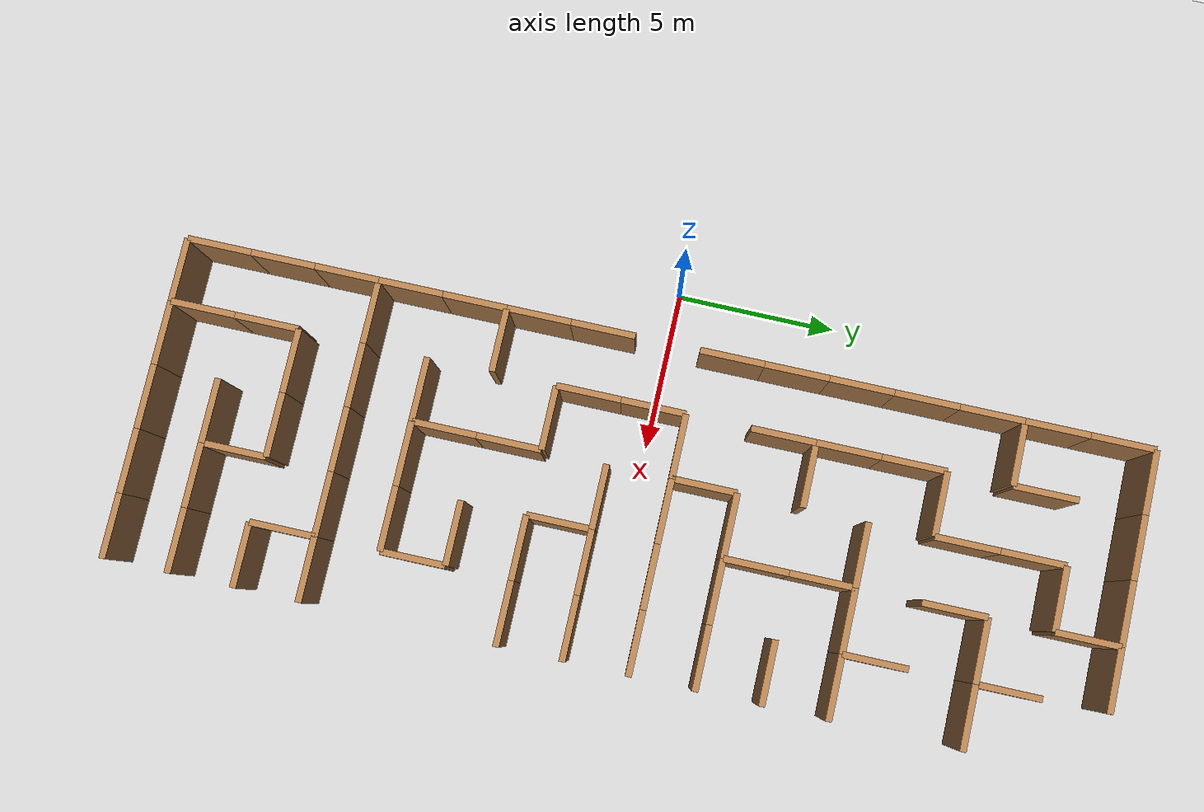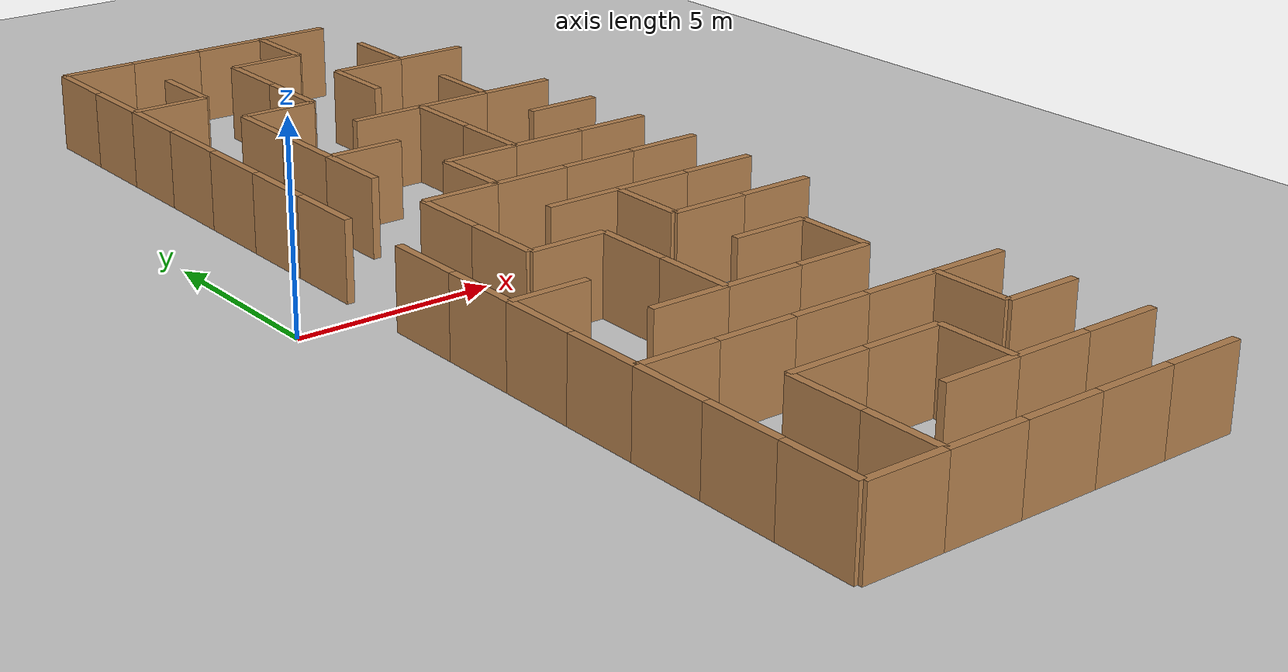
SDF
<sdf version="1.6">
 <world name="labyrinth_world">
  <include><uri>model://ground_plane</uri></include>
  <include><uri>model://sun</uri></include>
  <model name="h_wall_0">
   <static>true</static>
   <pose>2.0 -14.0 1.0 0 0 0</pose>
   <link name="link">
    <collision name="c"><geometry><box><size>0.2 2.0 2.0</size></box></geometry></collision>
    <visual name="v">
     <geometry><box><size>0.2 2.0 2.0</size></box></geometry>
     <material>
      <script><uri>file://media/materials/scripts/gazebo.material</uri><name>Gazebo/Wood</name></script>
     </material>
    </visual>
   </link>
  </model>
  <model name="h_wall_1">
   <static>true</static>
   <pose>2.0 -12.0 1.0 0 0 0</pose>
   <link name="link">
    <collision name="c"><geometry><box><size>0.2 2.0 2.0</size></box></geometry></collision>
    <visual name="v">
     <geometry><box><size>0.2 2.0 2.0</size></box></geometry>
     <material>
      <script><uri>file://media/materials/scripts/gazebo.material</uri><name>Gazebo/WoodFloor</name></script>
     </material>
    </visual>
   </link>
  </model>
  <model name="h_wall_2">
   <static>true</static>
   <pose>2.0 -10.0 1.0 0 0 0</pose>
   <link name="link">
    <collision name="c"><geometry><box><size>0.2 2.0 2.0</size></box></geometry></collision>
    <visual name="v">
     <geometry><box><size>0.2 2.0 2.0</size></box></geometry>
     <material>
      <script><uri>file://media/materials/scripts/gazebo.material</uri><name>Gazebo/Wood</name></script>
     </material>
    </visual>
   </link>
  </model>
  <model name="h_wall_3">
   <static>true</static>
   <pose>2.0 -8.0 1.0 0 0 0</pose>
   <link name="link">
    <collision name="c"><geometry><box><size>0.2 2.0 2.0</size></box></geometry></collision>
    <visual name="v">
     <geometry><box><size>0.2 2.0 2.0</size></box></geometry>
     <material>
      <script><uri>file://media/materials/scripts/gazebo.material</uri><name>Gazebo/WoodFloor</name></script>
     </material>
    </visual>
   </link>
  </model>
  <model name="h_wall_4">
   <static>true</static>
   <pose>2.0 -6.0 1.0 0 0 0</pose>
   <link name="link">
    <collision name="c"><geometry><box><size>0.2 2.0 2.0</size></box></geometry></collision>
    <visual name="v">
     <geometry><box><size>0.2 2.0 2.0</size></box></geometry>
     <material>
      <script><uri>file://media/materials/scripts/gazebo.material</uri><name>Gazebo/Wood</name></script>
     </material>
    </visual>
   </link>
  </model>
  <model name="h_wall_5">
   <static>true</static>
   <pose>2.0 -4.0 1.0 0 0 0</pose>
   <link name="link">
    <collision name="c"><geometry><box><size>0.2 2.0 2.0</size></box></geometry></collision>
    <visual name="v">
     <geometry><box><size>0.2 2.0 2.0</size></box></geometry>
     <material>
      <script><uri>file://media/materials/scripts/gazebo.material</uri><name>Gazebo/WoodFloor</name></script>
     </material>
    </visual>
   </link>
  </model>
  <model name="h_wall_6">
   <static>true</static>
   <pose>2.0 -2.0 1.0 0 0 0</pose>
   <link name="link">
    <collision name="c"><geometry><box><size>0.2 2.0 2.0</size></box></geometry></collision>
    <visual name="v">
     <geometry><box><size>0.2 2.0 2.0</size></box></geometry>
     <material>
      <script><uri>file://media/materials/scripts/gazebo.material</uri><name>Gazebo/Wood</name></script>
     </material>
    </visual>
   </link>
  </model>
  <model name="h_wall_7">
   <static>true</static>
   <pose>2.0 2.0 1.0 0 0 0</pose>
   <link name="link">
    <collision name="c"><geometry><box><size>0.2 2.0 2.0</size></box></geometry></collision>
    <visual name="v">
     <geometry><box><size>0.2 2.0 2.0</size></box></geometry>
     <material>
      <script><uri>file://media/materials/scripts/gazebo.material</uri><name>Gazebo/WoodFloor</name></script>
     </material>
    </visual>
   </link>
  </model>
  <model name="h_wall_8">
   <static>true</static>
   <pose>2.0 4.0 1.0 0 0 0</pose>
   <link name="link">
    <collision name="c"><geometry><box><size>0.2 2.0 2.0</size></box></geometry></collision>
    <visual name="v">
     <geometry><box><size>0.2 2.0 2.0</size></box></geometry>
     <material>
      <script><uri>file://media/materials/scripts/gazebo.material</uri><name>Gazebo/Wood</name></script>
     </material>
    </visual>
   </link>
  </model>
  <model name="h_wall_9">
   <static>true</static>
   <pose>2.0 6.0 1.0 0 0 0</pose>
   <link name="link">
    <collision name="c"><geometry><box><size>0.2 2.0 2.0</size></box></geometry></collision>
    <visual name="v">
     <geometry><box><size>0.2 2.0 2.0</size></box></geometry>
     <material>
      <script><uri>file://media/materials/scripts/gazebo.material</uri><name>Gazebo/WoodFloor</name></script>
     </material>
    </visual>
   </link>
  </model>
  <model name="h_wall_10">
   <static>true</static>
   <pose>2.0 8.0 1.0 0 0 0</pose>
   <link name="link">
    <collision name="c"><geometry><box><size>0.2 2.0 2.0</size></box></geometry></collision>
    <visual name="v">
     <geometry><box><size>0.2 2.0 2.0</size></box></geometry>
     <material>
      <script><uri>file://media/materials/scripts/gazebo.material</uri><name>Gazebo/Wood</name></script>
     </material>
    </visual>
   </link>
  </model>
  <model name="h_wall_11">
   <static>true</static>
   <pose>2.0 10.0 1.0 0 0 0</pose>
   <link name="link">
    <collision name="c"><geometry><box><size>0.2 2.0 2.0</size></box></geometry></collision>
    <visual name="v">
     <geometry><box><size>0.2 2.0 2.0</size></box></geometry>
     <material>
      <script><uri>file://media/materials/scripts/gazebo.material</uri><name>Gazebo/WoodFloor</name></script>
     </material>
    </visual>
   </link>
  </model>
  <model name="h_wall_12">
   <static>true</static>
   <pose>2.0 12.0 1.0 0 0 0</pose>
   <link name="link">
    <collision name="c"><geometry><box><size>0.2 2.0 2.0</size></box></geometry></collision>
    <visual name="v">
     <geometry><box><size>0.2 2.0 2.0</size></box></geometry>
     <material>
      <script><uri>file://media/materials/scripts/gazebo.material</uri><name>Gazebo/Wood</name></script>
     </material>
    </visual>
   </link>
  </model>
  <model name="h_wall_13">
   <static>true</static>
   <pose>2.0 14.0 1.0 0 0 0</pose>
   <link name="link">
    <collision name="c"><geometry><box><size>0.2 2.0 2.0</size></box></geometry></collision>
    <visual name="v">
     <geometry><box><size>0.2 2.0 2.0</size></box></geometry>
     <material>
      <script><uri>file://media/materials/scripts/gazebo.material</uri><name>Gazebo/WoodFloor</name></script>
     </material>
    </visual>
   </link>
  </model>
  <model name="h_wall_14">
   <static>true</static>
   <pose>4.0 -14.0 1.0 0 0 0</pose>
   <link name="link">
    <collision name="c"><geometry><box><size>0.2 2.0 2.0</size></box></geometry></collision>
    <visual name="v">
     <geometry><box><size>0.2 2.0 2.0</size></box></geometry>
     <material>
      <script><uri>file://media/materials/scripts/gazebo.material</uri><name>Gazebo/Wood</name></script>
     </material>
    </visual>
   </link>
  </model>
  <model name="h_wall_15">
   <static>true</static>
   <pose>4.0 -12.0 1.0 0 0 0</pose>
   <link name="link">
    <collision name="c"><geometry><box><size>0.2 2.0 2.0</size></box></geometry></collision>
    <visual name="v">
     <geometry><box><size>0.2 2.0 2.0</size></box></geometry>
     <material>
      <script><uri>file://media/materials/scripts/gazebo.material</uri><name>Gazebo/WoodFloor</name></script>
     </material>
    </visual>
   </link>
  </model>
  <model name="h_wall_16">
   <static>true</static>
   <pose>4.0 -2.0 1.0 0 0 0</pose>
   <link name="link">
    <collision name="c"><geometry><box><size>0.2 2.0 2.0</size></box></geometry></collision>
    <visual name="v">
     <geometry><box><size>0.2 2.0 2.0</size></box></geometry>
     <material>
      <script><uri>file://media/materials/scripts/gazebo.material</uri><name>Gazebo/Wood</name></script>
     </material>
    </visual>
   </link>
  </model>
  <model name="h_wall_17">
   <static>true</static>
   <pose>4.0 0.0 1.0 0 0 0</pose>
   <link name="link">
    <collision name="c"><geometry><box><size>0.2 2.0 2.0</size></box></geometry></collision>
    <visual name="v">
     <geometry><box><size>0.2 2.0 2.0</size></box></geometry>
     <material>
      <script><uri>file://media/materials/scripts/gazebo.material</uri><name>Gazebo/WoodFloor</name></script>
     </material>
    </visual>
   </link>
  </model>
  <model name="h_wall_18">
   <static>true</static>
   <pose>4.0 4.0 1.0 0 0 0</pose>
   <link name="link">
    <collision name="c"><geometry><box><size>0.2 2.0 2.0</size></box></geometry></collision>
    <visual name="v">
     <geometry><box><size>0.2 2.0 2.0</size></box></geometry>
     <material>
      <script><uri>file://media/materials/scripts/gazebo.material</uri><name>Gazebo/Wood</name></script>
     </material>
    </visual>
   </link>
  </model>
  <model name="h_wall_19">
   <static>true</static>
   <pose>4.0 6.0 1.0 0 0 0</pose>
   <link name="link">
    <collision name="c"><geometry><box><size>0.2 2.0 2.0</size></box></geometry></collision>
    <visual name="v">
     <geometry><box><size>0.2 2.0 2.0</size></box></geometry>
     <material>
      <script><uri>file://media/materials/scripts/gazebo.material</uri><name>Gazebo/WoodFloor</name></script>
     </material>
    </visual>
   </link>
  </model>
  <model name="h_wall_20">
   <static>true</static>
   <pose>4.0 8.0 1.0 0 0 0</pose>
   <link name="link">
    <collision name="c"><geometry><box><size>0.2 2.0 2.0</size></box></geometry></collision>
    <visual name="v">
     <geometry><box><size>0.2 2.0 2.0</size></box></geometry>
     <material>
      <script><uri>file://media/materials/scripts/gazebo.material</uri><name>Gazebo/Wood</name></script>
     </material>
    </visual>
   </link>
  </model>
  <model name="h_wall_21">
   <static>true</static>
   <pose>4.0 12.0 1.0 0 0 0</pose>
   <link name="link">
    <collision name="c"><geometry><box><size>0.2 2.0 2.0</size></box></geometry></collision>
    <visual name="v">
     <geometry><box><size>0.2 2.0 2.0</size></box></geometry>
     <material>
      <script><uri>file://media/materials/scripts/gazebo.material</uri><name>Gazebo/WoodFloor</name></script>
     </material>
    </visual>
   </link>
  </model>
  <model name="h_wall_22">
   <static>true</static>
   <pose>6.0 -6.0 1.0 0 0 0</pose>
   <link name="link">
    <collision name="c"><geometry><box><size>0.2 2.0 2.0</size></box></geometry></collision>
    <visual name="v">
     <geometry><box><size>0.2 2.0 2.0</size></box></geometry>
     <material>
      <script><uri>file://media/materials/scripts/gazebo.material</uri><name>Gazebo/Wood</name></script>
     </material>
    </visual>
   </link>
  </model>
  <model name="h_wall_23">
   <static>true</static>
   <pose>6.0 -4.0 1.0 0 0 0</pose>
   <link name="link">
    <collision name="c"><geometry><box><size>0.2 2.0 2.0</size></box></geometry></collision>
    <visual name="v">
     <geometry><box><size>0.2 2.0 2.0</size></box></geometry>
     <material>
      <script><uri>file://media/materials/scripts/gazebo.material</uri><name>Gazebo/WoodFloor</name></script>
     </material>
    </visual>
   </link>
  </model>
  <model name="h_wall_24">
   <static>true</static>
   <pose>6.0 2.0 1.0 0 0 0</pose>
   <link name="link">
    <collision name="c"><geometry><box><size>0.2 2.0 2.0</size></box></geometry></collision>
    <visual name="v">
     <geometry><box><size>0.2 2.0 2.0</size></box></geometry>
     <material>
      <script><uri>file://media/materials/scripts/gazebo.material</uri><name>Gazebo/Wood</name></script>
     </material>
    </visual>
   </link>
  </model>
  <model name="h_wall_25">
   <static>true</static>
   <pose>6.0 10.0 1.0 0 0 0</pose>
   <link name="link">
    <collision name="c"><geometry><box><size>0.2 2.0 2.0</size></box></geometry></collision>
    <visual name="v">
     <geometry><box><size>0.2 2.0 2.0</size></box></geometry>
     <material>
      <script><uri>file://media/materials/scripts/gazebo.material</uri><name>Gazebo/WoodFloor</name></script>
     </material>
    </visual>
   </link>
  </model>
  <model name="h_wall_26">
   <static>true</static>
   <pose>6.0 12.0 1.0 0 0 0</pose>
   <link name="link">
    <collision name="c"><geometry><box><size>0.2 2.0 2.0</size></box></geometry></collision>
    <visual name="v">
     <geometry><box><size>0.2 2.0 2.0</size></box></geometry>
     <material>
      <script><uri>file://media/materials/scripts/gazebo.material</uri><name>Gazebo/Wood</name></script>
     </material>
    </visual>
   </link>
  </model>
  <model name="h_wall_27">
   <static>true</static>
   <pose>8.0 -12.0 1.0 0 0 0</pose>
   <link name="link">
    <collision name="c"><geometry><box><size>0.2 2.0 2.0</size></box></geometry></collision>
    <visual name="v">
     <geometry><box><size>0.2 2.0 2.0</size></box></geometry>
     <material>
      <script><uri>file://media/materials/scripts/gazebo.material</uri><name>Gazebo/WoodFloor</name></script>
     </material>
    </visual>
   </link>
  </model>
  <model name="h_wall_28">
   <static>true</static>
   <pose>8.0 -2.0 1.0 0 0 0</pose>
   <link name="link">
    <collision name="c"><geometry><box><size>0.2 2.0 2.0</size></box></geometry></collision>
    <visual name="v">
     <geometry><box><size>0.2 2.0 2.0</size></box></geometry>
     <material>
      <script><uri>file://media/materials/scripts/gazebo.material</uri><name>Gazebo/Wood</name></script>
     </material>
    </visual>
   </link>
  </model>
  <model name="h_wall_29">
   <static>true</static>
   <pose>8.0 4.0 1.0 0 0 0</pose>
   <link name="link">
    <collision name="c"><geometry><box><size>0.2 2.0 2.0</size></box></geometry></collision>
    <visual name="v">
     <geometry><box><size>0.2 2.0 2.0</size></box></geometry>
     <material>
      <script><uri>file://media/materials/scripts/gazebo.material</uri><name>Gazebo/WoodFloor</name></script>
     </material>
    </visual>
   </link>
  </model>
  <model name="h_wall_30">
   <static>true</static>
   <pose>8.0 6.0 1.0 0 0 0</pose>
   <link name="link">
    <collision name="c"><geometry><box><size>0.2 2.0 2.0</size></box></geometry></collision>
    <visual name="v">
     <geometry><box><size>0.2 2.0 2.0</size></box></geometry>
     <material>
      <script><uri>file://media/materials/scripts/gazebo.material</uri><name>Gazebo/Wood</name></script>
     </material>
    </visual>
   </link>
  </model>
  <model name="h_wall_31">
   <static>true</static>
   <pose>8.0 10.0 1.0 0 0 0</pose>
   <link name="link">
    <collision name="c"><geometry><box><size>0.2 2.0 2.0</size></box></geometry></collision>
    <visual name="v">
     <geometry><box><size>0.2 2.0 2.0</size></box></geometry>
     <material>
      <script><uri>file://media/materials/scripts/gazebo.material</uri><name>Gazebo/WoodFloor</name></script>
     </material>
    </visual>
   </link>
  </model>
  <model name="h_wall_32">
   <static>true</static>
   <pose>8.0 14.0 1.0 0 0 0</pose>
   <link name="link">
    <collision name="c"><geometry><box><size>0.2 2.0 2.0</size></box></geometry></collision>
    <visual name="v">
     <geometry><box><size>0.2 2.0 2.0</size></box></geometry>
     <material>
      <script><uri>file://media/materials/scripts/gazebo.material</uri><name>Gazebo/Wood</name></script>
     </material>
    </visual>
   </link>
  </model>
  <model name="h_wall_33">
   <static>true</static>
   <pose>10.0 -10.0 1.0 0 0 0</pose>
   <link name="link">
    <collision name="c"><geometry><box><size>0.2 2.0 2.0</size></box></geometry></collision>
    <visual name="v">
     <geometry><box><size>0.2 2.0 2.0</size></box></geometry>
     <material>
      <script><uri>file://media/materials/scripts/gazebo.material</uri><name>Gazebo/WoodFloor</name></script>
     </material>
    </visual>
   </link>
  </model>
  <model name="h_wall_34">
   <static>true</static>
   <pose>10.0 -6.0 1.0 0 0 0</pose>
   <link name="link">
    <collision name="c"><geometry><box><size>0.2 2.0 2.0</size></box></geometry></collision>
    <visual name="v">
     <geometry><box><size>0.2 2.0 2.0</size></box></geometry>
     <material>
      <script><uri>file://media/materials/scripts/gazebo.material</uri><name>Gazebo/Wood</name></script>
     </material>
    </visual>
   </link>
  </model>
  <model name="h_wall_35">
   <static>true</static>
   <pose>10.0 8.0 1.0 0 0 0</pose>
   <link name="link">
    <collision name="c"><geometry><box><size>0.2 2.0 2.0</size></box></geometry></collision>
    <visual name="v">
     <geometry><box><size>0.2 2.0 2.0</size></box></geometry>
     <material>
      <script><uri>file://media/materials/scripts/gazebo.material</uri><name>Gazebo/WoodFloor</name></script>
     </material>
    </visual>
   </link>
  </model>
  <model name="h_wall_36">
   <static>true</static>
   <pose>10.0 12.0 1.0 0 0 0</pose>
   <link name="link">
    <collision name="c"><geometry><box><size>0.2 2.0 2.0</size></box></geometry></collision>
    <visual name="v">
     <geometry><box><size>0.2 2.0 2.0</size></box></geometry>
     <material>
      <script><uri>file://media/materials/scripts/gazebo.material</uri><name>Gazebo/Wood</name></script>
     </material>
    </visual>
   </link>
  </model>
  <model name="v_wall_119">
   <static>true</static>
   <pose>3.0 -15.0 1.0 0 0 0</pose>
   <link name="link">
    <collision name="c"><geometry><box><size>2.0 0.2 2.0</size></box></geometry></collision>
    <visual name="v">
     <geometry><box><size>2.0 0.2 2.0</size></box></geometry>
     <material>
      <script><uri>file://media/materials/scripts/gazebo.material</uri><name>Gazebo/WoodFloor</name></script>
     </material>
    </visual>
   </link>
  </model>
  <model name="v_wall_120">
   <static>true</static>
   <pose>3.0 -9.0 1.0 0 0 0</pose>
   <link name="link">
    <collision name="c"><geometry><box><size>2.0 0.2 2.0</size></box></geometry></collision>
    <visual name="v">
     <geometry><box><size>2.0 0.2 2.0</size></box></geometry>
     <material>
      <script><uri>file://media/materials/scripts/gazebo.material</uri><name>Gazebo/Wood</name></script>
     </material>
    </visual>
   </link>
  </model>
  <model name="v_wall_121">
   <static>true</static>
   <pose>3.0 -5.0 1.0 0 0 0</pose>
   <link name="link">
    <collision name="c"><geometry><box><size>2.0 0.2 2.0</size></box></geometry></collision>
    <visual name="v">
     <geometry><box><size>2.0 0.2 2.0</size></box></geometry>
     <material>
      <script><uri>file://media/materials/scripts/gazebo.material</uri><name>Gazebo/WoodFloor</name></script>
     </material>
    </visual>
   </link>
  </model>
  <model name="v_wall_122">
   <static>true</static>
   <pose>3.0 11.0 1.0 0 0 0</pose>
   <link name="link">
    <collision name="c"><geometry><box><size>2.0 0.2 2.0</size></box></geometry></collision>
    <visual name="v">
     <geometry><box><size>2.0 0.2 2.0</size></box></geometry>
     <material>
      <script><uri>file://media/materials/scripts/gazebo.material</uri><name>Gazebo/Wood</name></script>
     </material>
    </visual>
   </link>
  </model>
  <model name="v_wall_123">
   <static>true</static>
   <pose>3.0 15.0 1.0 0 0 0</pose>
   <link name="link">
    <collision name="c"><geometry><box><size>2.0 0.2 2.0</size></box></geometry></collision>
    <visual name="v">
     <geometry><box><size>2.0 0.2 2.0</size></box></geometry>
     <material>
      <script><uri>file://media/materials/scripts/gazebo.material</uri><name>Gazebo/WoodFloor</name></script>
     </material>
    </visual>
   </link>
  </model>
  <model name="v_wall_124">
   <static>true</static>
   <pose>5.0 -15.0 1.0 0 0 0</pose>
   <link name="link">
    <collision name="c"><geometry><box><size>2.0 0.2 2.0</size></box></geometry></collision>
    <visual name="v">
     <geometry><box><size>2.0 0.2 2.0</size></box></geometry>
     <material>
      <script><uri>file://media/materials/scripts/gazebo.material</uri><name>Gazebo/Wood</name></script>
     </material>
    </visual>
   </link>
  </model>
  <model name="v_wall_125">
   <static>true</static>
   <pose>5.0 -11.0 1.0 0 0 0</pose>
   <link name="link">
    <collision name="c"><geometry><box><size>2.0 0.2 2.0</size></box></geometry></collision>
    <visual name="v">
     <geometry><box><size>2.0 0.2 2.0</size></box></geometry>
     <material>
      <script><uri>file://media/materials/scripts/gazebo.material</uri><name>Gazebo/WoodFloor</name></script>
     </material>
    </visual>
   </link>
  </model>
  <model name="v_wall_126">
   <static>true</static>
   <pose>5.0 -9.0 1.0 0 0 0</pose>
   <link name="link">
    <collision name="c"><geometry><box><size>2.0 0.2 2.0</size></box></geometry></collision>
    <visual name="v">
     <geometry><box><size>2.0 0.2 2.0</size></box></geometry>
     <material>
      <script><uri>file://media/materials/scripts/gazebo.material</uri><name>Gazebo/Wood</name></script>
     </material>
    </visual>
   </link>
  </model>
  <model name="v_wall_127">
   <static>true</static>
   <pose>5.0 -7.0 1.0 0 0 0</pose>
   <link name="link">
    <collision name="c"><geometry><box><size>2.0 0.2 2.0</size></box></geometry></collision>
    <visual name="v">
     <geometry><box><size>2.0 0.2 2.0</size></box></geometry>
     <material>
      <script><uri>file://media/materials/scripts/gazebo.material</uri><name>Gazebo/WoodFloor</name></script>
     </material>
    </visual>
   </link>
  </model>
  <model name="v_wall_128">
   <static>true</static>
   <pose>5.0 -3.0 1.0 0 0 0</pose>
   <link name="link">
    <collision name="c"><geometry><box><size>2.0 0.2 2.0</size></box></geometry></collision>
    <visual name="v">
     <geometry><box><size>2.0 0.2 2.0</size></box></geometry>
     <material>
      <script><uri>file://media/materials/scripts/gazebo.material</uri><name>Gazebo/Wood</name></script>
     </material>
    </visual>
   </link>
  </model>
  <model name="v_wall_129">
   <static>true</static>
   <pose>5.0 1.0 1.0 0 0 0</pose>
   <link name="link">
    <collision name="c"><geometry><box><size>2.0 0.2 2.0</size></box></geometry></collision>
    <visual name="v">
     <geometry><box><size>2.0 0.2 2.0</size></box></geometry>
     <material>
      <script><uri>file://media/materials/scripts/gazebo.material</uri><name>Gazebo/WoodFloor</name></script>
     </material>
    </visual>
   </link>
  </model>
  <model name="v_wall_130">
   <static>true</static>
   <pose>5.0 5.0 1.0 0 0 0</pose>
   <link name="link">
    <collision name="c"><geometry><box><size>2.0 0.2 2.0</size></box></geometry></collision>
    <visual name="v">
     <geometry><box><size>2.0 0.2 2.0</size></box></geometry>
     <material>
      <script><uri>file://media/materials/scripts/gazebo.material</uri><name>Gazebo/Wood</name></script>
     </material>
    </visual>
   </link>
  </model>
  <model name="v_wall_131">
   <static>true</static>
   <pose>5.0 9.0 1.0 0 0 0</pose>
   <link name="link">
    <collision name="c"><geometry><box><size>2.0 0.2 2.0</size></box></geometry></collision>
    <visual name="v">
     <geometry><box><size>2.0 0.2 2.0</size></box></geometry>
     <material>
      <script><uri>file://media/materials/scripts/gazebo.material</uri><name>Gazebo/WoodFloor</name></script>
     </material>
    </visual>
   </link>
  </model>
  <model name="v_wall_132">
   <static>true</static>
   <pose>5.0 15.0 1.0 0 0 0</pose>
   <link name="link">
    <collision name="c"><geometry><box><size>2.0 0.2 2.0</size></box></geometry></collision>
    <visual name="v">
     <geometry><box><size>2.0 0.2 2.0</size></box></geometry>
     <material>
      <script><uri>file://media/materials/scripts/gazebo.material</uri><name>Gazebo/Wood</name></script>
     </material>
    </visual>
   </link>
  </model>
  <model name="v_wall_133">
   <static>true</static>
   <pose>7.0 -15.0 1.0 0 0 0</pose>
   <link name="link">
    <collision name="c"><geometry><box><size>2.0 0.2 2.0</size></box></geometry></collision>
    <visual name="v">
     <geometry><box><size>2.0 0.2 2.0</size></box></geometry>
     <material>
      <script><uri>file://media/materials/scripts/gazebo.material</uri><name>Gazebo/WoodFloor</name></script>
     </material>
    </visual>
   </link>
  </model>
  <model name="v_wall_134">
   <static>true</static>
   <pose>7.0 -13.0 1.0 0 0 0</pose>
   <link name="link">
    <collision name="c"><geometry><box><size>2.0 0.2 2.0</size></box></geometry></collision>
    <visual name="v">
     <geometry><box><size>2.0 0.2 2.0</size></box></geometry>
     <material>
      <script><uri>file://media/materials/scripts/gazebo.material</uri><name>Gazebo/Wood</name></script>
     </material>
    </visual>
   </link>
  </model>
  <model name="v_wall_135">
   <static>true</static>
   <pose>7.0 -11.0 1.0 0 0 0</pose>
   <link name="link">
    <collision name="c"><geometry><box><size>2.0 0.2 2.0</size></box></geometry></collision>
    <visual name="v">
     <geometry><box><size>2.0 0.2 2.0</size></box></geometry>
     <material>
      <script><uri>file://media/materials/scripts/gazebo.material</uri><name>Gazebo/WoodFloor</name></script>
     </material>
    </visual>
   </link>
  </model>
  <model name="v_wall_136">
   <static>true</static>
   <pose>7.0 -9.0 1.0 0 0 0</pose>
   <link name="link">
    <collision name="c"><geometry><box><size>2.0 0.2 2.0</size></box></geometry></collision>
    <visual name="v">
     <geometry><box><size>2.0 0.2 2.0</size></box></geometry>
     <material>
      <script><uri>file://media/materials/scripts/gazebo.material</uri><name>Gazebo/Wood</name></script>
     </material>
    </visual>
   </link>
  </model>
  <model name="v_wall_137">
   <static>true</static>
   <pose>7.0 -7.0 1.0 0 0 0</pose>
   <link name="link">
    <collision name="c"><geometry><box><size>2.0 0.2 2.0</size></box></geometry></collision>
    <visual name="v">
     <geometry><box><size>2.0 0.2 2.0</size></box></geometry>
     <material>
      <script><uri>file://media/materials/scripts/gazebo.material</uri><name>Gazebo/WoodFloor</name></script>
     </material>
    </visual>
   </link>
  </model>
  <model name="v_wall_138">
   <static>true</static>
   <pose>7.0 -1.0 1.0 0 0 0</pose>
   <link name="link">
    <collision name="c"><geometry><box><size>2.0 0.2 2.0</size></box></geometry></collision>
    <visual name="v">
     <geometry><box><size>2.0 0.2 2.0</size></box></geometry>
     <material>
      <script><uri>file://media/materials/scripts/gazebo.material</uri><name>Gazebo/Wood</name></script>
     </material>
    </visual>
   </link>
  </model>
  <model name="v_wall_139">
   <static>true</static>
   <pose>7.0 1.0 1.0 0 0 0</pose>
   <link name="link">
    <collision name="c"><geometry><box><size>2.0 0.2 2.0</size></box></geometry></collision>
    <visual name="v">
     <geometry><box><size>2.0 0.2 2.0</size></box></geometry>
     <material>
      <script><uri>file://media/materials/scripts/gazebo.material</uri><name>Gazebo/WoodFloor</name></script>
     </material>
    </visual>
   </link>
  </model>
  <model name="v_wall_140">
   <static>true</static>
   <pose>7.0 3.0 1.0 0 0 0</pose>
   <link name="link">
    <collision name="c"><geometry><box><size>2.0 0.2 2.0</size></box></geometry></collision>
    <visual name="v">
     <geometry><box><size>2.0 0.2 2.0</size></box></geometry>
     <material>
      <script><uri>file://media/materials/scripts/gazebo.material</uri><name>Gazebo/Wood</name></script>
     </material>
    </visual>
   </link>
  </model>
  <model name="v_wall_141">
   <static>true</static>
   <pose>7.0 7.0 1.0 0 0 0</pose>
   <link name="link">
    <collision name="c"><geometry><box><size>2.0 0.2 2.0</size></box></geometry></collision>
    <visual name="v">
     <geometry><box><size>2.0 0.2 2.0</size></box></geometry>
     <material>
      <script><uri>file://media/materials/scripts/gazebo.material</uri><name>Gazebo/WoodFloor</name></script>
     </material>
    </visual>
   </link>
  </model>
  <model name="v_wall_142">
   <static>true</static>
   <pose>7.0 13.0 1.0 0 0 0</pose>
   <link name="link">
    <collision name="c"><geometry><box><size>2.0 0.2 2.0</size></box></geometry></collision>
    <visual name="v">
     <geometry><box><size>2.0 0.2 2.0</size></box></geometry>
     <material>
      <script><uri>file://media/materials/scripts/gazebo.material</uri><name>Gazebo/Wood</name></script>
     </material>
    </visual>
   </link>
  </model>
  <model name="v_wall_143">
   <static>true</static>
   <pose>7.0 15.0 1.0 0 0 0</pose>
   <link name="link">
    <collision name="c"><geometry><box><size>2.0 0.2 2.0</size></box></geometry></collision>
    <visual name="v">
     <geometry><box><size>2.0 0.2 2.0</size></box></geometry>
     <material>
      <script><uri>file://media/materials/scripts/gazebo.material</uri><name>Gazebo/WoodFloor</name></script>
     </material>
    </visual>
   </link>
  </model>
  <model name="v_wall_144">
   <static>true</static>
   <pose>9.0 -15.0 1.0 0 0 0</pose>
   <link name="link">
    <collision name="c"><geometry><box><size>2.0 0.2 2.0</size></box></geometry></collision>
    <visual name="v">
     <geometry><box><size>2.0 0.2 2.0</size></box></geometry>
     <material>
      <script><uri>file://media/materials/scripts/gazebo.material</uri><name>Gazebo/Wood</name></script>
     </material>
    </visual>
   </link>
  </model>
  <model name="v_wall_145">
   <static>true</static>
   <pose>9.0 -13.0 1.0 0 0 0</pose>
   <link name="link">
    <collision name="c"><geometry><box><size>2.0 0.2 2.0</size></box></geometry></collision>
    <visual name="v">
     <geometry><box><size>2.0 0.2 2.0</size></box></geometry>
     <material>
      <script><uri>file://media/materials/scripts/gazebo.material</uri><name>Gazebo/WoodFloor</name></script>
     </material>
    </visual>
   </link>
  </model>
  <model name="v_wall_146">
   <static>true</static>
   <pose>9.0 -9.0 1.0 0 0 0</pose>
   <link name="link">
    <collision name="c"><geometry><box><size>2.0 0.2 2.0</size></box></geometry></collision>
    <visual name="v">
     <geometry><box><size>2.0 0.2 2.0</size></box></geometry>
     <material>
      <script><uri>file://media/materials/scripts/gazebo.material</uri><name>Gazebo/Wood</name></script>
     </material>
    </visual>
   </link>
  </model>
  <model name="v_wall_147">
   <static>true</static>
   <pose>9.0 -7.0 1.0 0 0 0</pose>
   <link name="link">
    <collision name="c"><geometry><box><size>2.0 0.2 2.0</size></box></geometry></collision>
    <visual name="v">
     <geometry><box><size>2.0 0.2 2.0</size></box></geometry>
     <material>
      <script><uri>file://media/materials/scripts/gazebo.material</uri><name>Gazebo/WoodFloor</name></script>
     </material>
    </visual>
   </link>
  </model>
  <model name="v_wall_148">
   <static>true</static>
   <pose>9.0 -5.0 1.0 0 0 0</pose>
   <link name="link">
    <collision name="c"><geometry><box><size>2.0 0.2 2.0</size></box></geometry></collision>
    <visual name="v">
     <geometry><box><size>2.0 0.2 2.0</size></box></geometry>
     <material>
      <script><uri>file://media/materials/scripts/gazebo.material</uri><name>Gazebo/Wood</name></script>
     </material>
    </visual>
   </link>
  </model>
  <model name="v_wall_149">
   <static>true</static>
   <pose>9.0 -3.0 1.0 0 0 0</pose>
   <link name="link">
    <collision name="c"><geometry><box><size>2.0 0.2 2.0</size></box></geometry></collision>
    <visual name="v">
     <geometry><box><size>2.0 0.2 2.0</size></box></geometry>
     <material>
      <script><uri>file://media/materials/scripts/gazebo.material</uri><name>Gazebo/WoodFloor</name></script>
     </material>
    </visual>
   </link>
  </model>
  <model name="v_wall_150">
   <static>true</static>
   <pose>9.0 -1.0 1.0 0 0 0</pose>
   <link name="link">
    <collision name="c"><geometry><box><size>2.0 0.2 2.0</size></box></geometry></collision>
    <visual name="v">
     <geometry><box><size>2.0 0.2 2.0</size></box></geometry>
     <material>
      <script><uri>file://media/materials/scripts/gazebo.material</uri><name>Gazebo/Wood</name></script>
     </material>
    </visual>
   </link>
  </model>
  <model name="v_wall_151">
   <static>true</static>
   <pose>9.0 1.0 1.0 0 0 0</pose>
   <link name="link">
    <collision name="c"><geometry><box><size>2.0 0.2 2.0</size></box></geometry></collision>
    <visual name="v">
     <geometry><box><size>2.0 0.2 2.0</size></box></geometry>
     <material>
      <script><uri>file://media/materials/scripts/gazebo.material</uri><name>Gazebo/WoodFloor</name></script>
     </material>
    </visual>
   </link>
  </model>
  <model name="v_wall_152">
   <static>true</static>
   <pose>9.0 3.0 1.0 0 0 0</pose>
   <link name="link">
    <collision name="c"><geometry><box><size>2.0 0.2 2.0</size></box></geometry></collision>
    <visual name="v">
     <geometry><box><size>2.0 0.2 2.0</size></box></geometry>
     <material>
      <script><uri>file://media/materials/scripts/gazebo.material</uri><name>Gazebo/Wood</name></script>
     </material>
    </visual>
   </link>
  </model>
  <model name="v_wall_153">
   <static>true</static>
   <pose>9.0 7.0 1.0 0 0 0</pose>
   <link name="link">
    <collision name="c"><geometry><box><size>2.0 0.2 2.0</size></box></geometry></collision>
    <visual name="v">
     <geometry><box><size>2.0 0.2 2.0</size></box></geometry>
     <material>
      <script><uri>file://media/materials/scripts/gazebo.material</uri><name>Gazebo/WoodFloor</name></script>
     </material>
    </visual>
   </link>
  </model>
  <model name="v_wall_154">
   <static>true</static>
   <pose>9.0 11.0 1.0 0 0 0</pose>
   <link name="link">
    <collision name="c"><geometry><box><size>2.0 0.2 2.0</size></box></geometry></collision>
    <visual name="v">
     <geometry><box><size>2.0 0.2 2.0</size></box></geometry>
     <material>
      <script><uri>file://media/materials/scripts/gazebo.material</uri><name>Gazebo/Wood</name></script>
     </material>
    </visual>
   </link>
  </model>
  <model name="v_wall_155">
   <static>true</static>
   <pose>9.0 15.0 1.0 0 0 0</pose>
   <link name="link">
    <collision name="c"><geometry><box><size>2.0 0.2 2.0</size></box></geometry></collision>
    <visual name="v">
     <geometry><box><size>2.0 0.2 2.0</size></box></geometry>
     <material>
      <script><uri>file://media/materials/scripts/gazebo.material</uri><name>Gazebo/WoodFloor</name></script>
     </material>
    </visual>
   </link>
  </model>
  <model name="v_wall_156">
   <static>true</static>
   <pose>11.0 -15.0 1.0 0 0 0</pose>
   <link name="link">
    <collision name="c"><geometry><box><size>2.0 0.2 2.0</size></box></geometry></collision>
    <visual name="v">
     <geometry><box><size>2.0 0.2 2.0</size></box></geometry>
     <material>
      <script><uri>file://media/materials/scripts/gazebo.material</uri><name>Gazebo/Wood</name></script>
     </material>
    </visual>
   </link>
  </model>
  <model name="v_wall_157">
   <static>true</static>
   <pose>11.0 -13.0 1.0 0 0 0</pose>
   <link name="link">
    <collision name="c"><geometry><box><size>2.0 0.2 2.0</size></box></geometry></collision>
    <visual name="v">
     <geometry><box><size>2.0 0.2 2.0</size></box></geometry>
     <material>
      <script><uri>file://media/materials/scripts/gazebo.material</uri><name>Gazebo/WoodFloor</name></script>
     </material>
    </visual>
   </link>
  </model>
  <model name="v_wall_158">
   <static>true</static>
   <pose>11.0 -11.0 1.0 0 0 0</pose>
   <link name="link">
    <collision name="c"><geometry><box><size>2.0 0.2 2.0</size></box></geometry></collision>
    <visual name="v">
     <geometry><box><size>2.0 0.2 2.0</size></box></geometry>
     <material>
      <script><uri>file://media/materials/scripts/gazebo.material</uri><name>Gazebo/Wood</name></script>
     </material>
    </visual>
   </link>
  </model>
  <model name="v_wall_159">
   <static>true</static>
   <pose>11.0 -9.0 1.0 0 0 0</pose>
   <link name="link">
    <collision name="c"><geometry><box><size>2.0 0.2 2.0</size></box></geometry></collision>
    <visual name="v">
     <geometry><box><size>2.0 0.2 2.0</size></box></geometry>
     <material>
      <script><uri>file://media/materials/scripts/gazebo.material</uri><name>Gazebo/WoodFloor</name></script>
     </material>
    </visual>
   </link>
  </model>
  <model name="v_wall_160">
   <static>true</static>
   <pose>11.0 -3.0 1.0 0 0 0</pose>
   <link name="link">
    <collision name="c"><geometry><box><size>2.0 0.2 2.0</size></box></geometry></collision>
    <visual name="v">
     <geometry><box><size>2.0 0.2 2.0</size></box></geometry>
     <material>
      <script><uri>file://media/materials/scripts/gazebo.material</uri><name>Gazebo/Wood</name></script>
     </material>
    </visual>
   </link>
  </model>
  <model name="v_wall_161">
   <static>true</static>
   <pose>11.0 -1.0 1.0 0 0 0</pose>
   <link name="link">
    <collision name="c"><geometry><box><size>2.0 0.2 2.0</size></box></geometry></collision>
    <visual name="v">
     <geometry><box><size>2.0 0.2 2.0</size></box></geometry>
     <material>
      <script><uri>file://media/materials/scripts/gazebo.material</uri><name>Gazebo/WoodFloor</name></script>
     </material>
    </visual>
   </link>
  </model>
  <model name="v_wall_162">
   <static>true</static>
   <pose>11.0 1.0 1.0 0 0 0</pose>
   <link name="link">
    <collision name="c"><geometry><box><size>2.0 0.2 2.0</size></box></geometry></collision>
    <visual name="v">
     <geometry><box><size>2.0 0.2 2.0</size></box></geometry>
     <material>
      <script><uri>file://media/materials/scripts/gazebo.material</uri><name>Gazebo/Wood</name></script>
     </material>
    </visual>
   </link>
  </model>
  <model name="v_wall_163">
   <static>true</static>
   <pose>11.0 3.0 1.0 0 0 0</pose>
   <link name="link">
    <collision name="c"><geometry><box><size>2.0 0.2 2.0</size></box></geometry></collision>
    <visual name="v">
     <geometry><box><size>2.0 0.2 2.0</size></box></geometry>
     <material>
      <script><uri>file://media/materials/scripts/gazebo.material</uri><name>Gazebo/WoodFloor</name></script>
     </material>
    </visual>
   </link>
  </model>
  <model name="v_wall_164">
   <static>true</static>
   <pose>11.0 5.0 1.0 0 0 0</pose>
   <link name="link">
    <collision name="c"><geometry><box><size>2.0 0.2 2.0</size></box></geometry></collision>
    <visual name="v">
     <geometry><box><size>2.0 0.2 2.0</size></box></geometry>
     <material>
      <script><uri>file://media/materials/scripts/gazebo.material</uri><name>Gazebo/Wood</name></script>
     </material>
    </visual>
   </link>
  </model>
  <model name="v_wall_165">
   <static>true</static>
   <pose>11.0 7.0 1.0 0 0 0</pose>
   <link name="link">
    <collision name="c"><geometry><box><size>2.0 0.2 2.0</size></box></geometry></collision>
    <visual name="v">
     <geometry><box><size>2.0 0.2 2.0</size></box></geometry>
     <material>
      <script><uri>file://media/materials/scripts/gazebo.material</uri><name>Gazebo/WoodFloor</name></script>
     </material>
    </visual>
   </link>
  </model>
  <model name="v_wall_166">
   <static>true</static>
   <pose>11.0 11.0 1.0 0 0 0</pose>
   <link name="link">
    <collision name="c"><geometry><box><size>2.0 0.2 2.0</size></box></geometry></collision>
    <visual name="v">
     <geometry><box><size>2.0 0.2 2.0</size></box></geometry>
     <material>
      <script><uri>file://media/materials/scripts/gazebo.material</uri><name>Gazebo/Wood</name></script>
     </material>
    </visual>
   </link>
  </model>
 </world>
</sdf>
